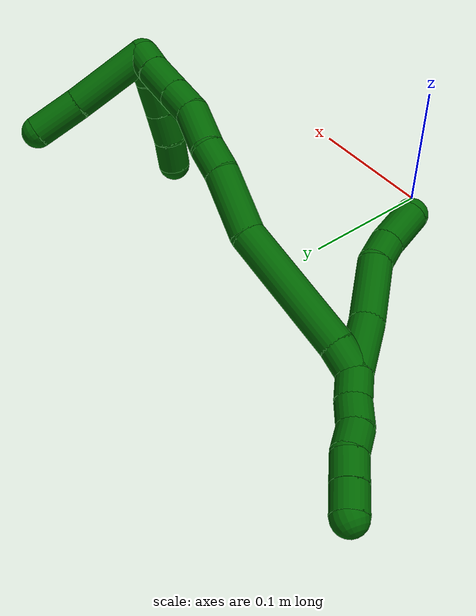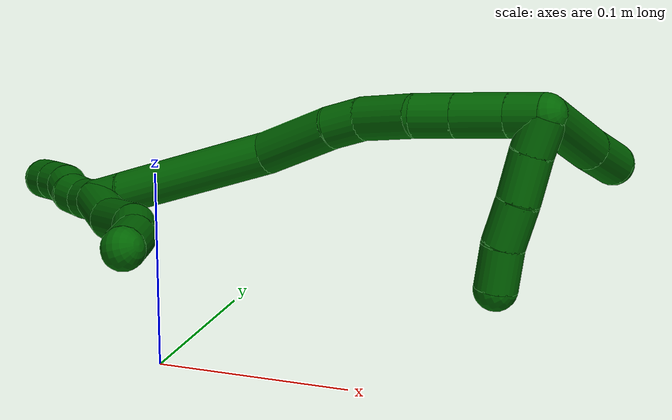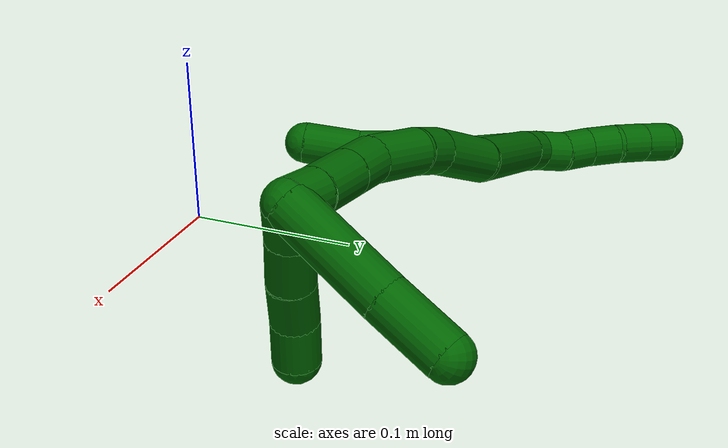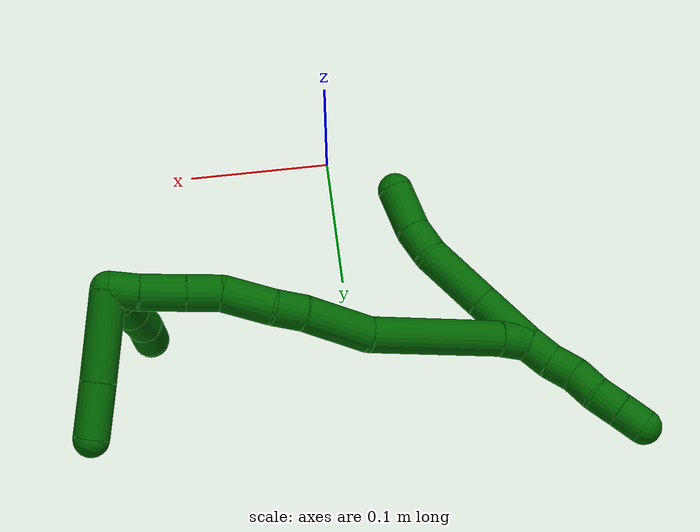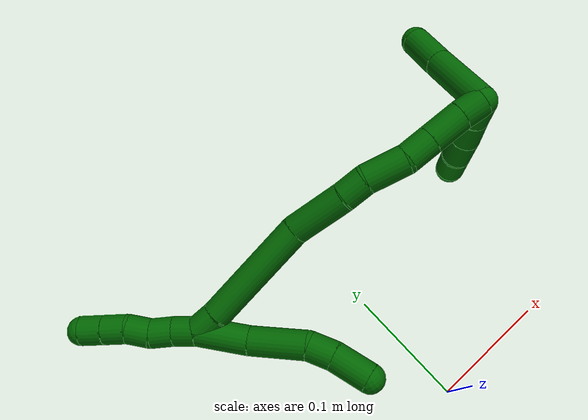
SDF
<sdf version="1.7">
 <world name="default">
  <model name="6">
   <static>0</static>
   <link name="6">
    <collision name="collision-cylinder-e_1_2_8">
     <pose>-0.005989 0.013119 -0.0169 -2.48148 -0.272953 0.762496</pose>
     <geometry><cylinder><radius>0.0125</radius><length>0.044433</length></cylinder></geometry>
     <surface>
      <friction><ode><mu>1.16</mu><mu2>1.16</mu2><slip1>0</slip1><slip2>0</slip2></ode></friction>
      <contact><ode><kp>1e+06</kp><kd>1</kd><max_vel>0</max_vel><min_depth>0.001</min_depth></ode></contact>
     </surface>
    </collision>
    <visual name="visual-cylinder-e_1_2_8">
     <pose>-0.005989 0.013119 -0.0169 -2.48148 -0.272953 0.762496</pose>
     <geometry><cylinder><radius>0.0125</radius><length>0.044433</length></cylinder></geometry>
     <material><ambient>0 0.392157 0.003922 1</ambient></material>
    </visual>
    <collision name="collision-cylinder-e_2_8_9">
     <pose>-0.020124 0.036579 -0.054857 -2.68509 -0.33419 1.25603</pose>
     <geometry><cylinder><radius>0.0125</radius><length>0.049668</length></cylinder></geometry>
     <surface>
      <friction><ode><mu>1.16</mu><mu2>1.16</mu2><slip1>0</slip1><slip2>0</slip2></ode></friction>
      <contact><ode><kp>1e+06</kp><kd>1</kd><max_vel>0</max_vel><min_depth>0.001</min_depth></ode></contact>
     </surface>
    </collision>
    <visual name="visual-cylinder-e_2_8_9">
     <pose>-0.020124 0.036579 -0.054857 -2.68509 -0.33419 1.25603</pose>
     <geometry><cylinder><radius>0.0125</radius><length>0.049668</length></cylinder></geometry>
     <material><ambient>0 0.392157 0.003922 1</ambient></material>
    </visual>
    <collision name="collision-cylinder-e_3_9_10">
     <pose>-0.032873 0.054335 -0.082994 -2.33311 -0.422092 0.928548</pose>
     <geometry><cylinder><radius>0.0125</radius><length>0.022475</length></cylinder></geometry>
     <surface>
      <friction><ode><mu>1.16</mu><mu2>1.16</mu2><slip1>0</slip1><slip2>0</slip2></ode></friction>
      <contact><ode><kp>1e+06</kp><kd>1</kd><max_vel>0</max_vel><min_depth>0.001</min_depth></ode></contact>
     </surface>
    </collision>
    <visual name="visual-cylinder-e_3_9_10">
     <pose>-0.032873 0.054335 -0.082994 -2.33311 -0.422092 0.928548</pose>
     <geometry><cylinder><radius>0.0125</radius><length>0.022475</length></cylinder></geometry>
     <material><ambient>0 0.392157 0.003922 1</ambient></material>
    </visual>
    <collision name="collision-cylinder-e_4_10_6">
     <pose>-0.047078 0.07227 -0.098814 -2.26404 -0.612039 1.18508</pose>
     <geometry><cylinder><radius>0.0125</radius><length>0.033424</length></cylinder></geometry>
     <surface>
      <friction><ode><mu>1.16</mu><mu2>1.16</mu2><slip1>0</slip1><slip2>0</slip2></ode></friction>
      <contact><ode><kp>1e+06</kp><kd>1</kd><max_vel>0</max_vel><min_depth>0.001</min_depth></ode></contact>
     </surface>
    </collision>
    <visual name="visual-cylinder-e_4_10_6">
     <pose>-0.047078 0.07227 -0.098814 -2.26404 -0.612039 1.18508</pose>
     <geometry><cylinder><radius>0.0125</radius><length>0.033424</length></cylinder></geometry>
     <material><ambient>0 0.392157 0.003922 1</ambient></material>
    </visual>
    <collision name="collision-cylinder-e_1_2_11">
     <pose>0.002731 -0.003729 0.008868 0.398062 0.276648 0.056144</pose>
     <geometry><cylinder><radius>0.0125</radius><length>0.02</length></cylinder></geometry>
     <surface>
      <friction><ode><mu>1.16</mu><mu2>1.16</mu2><slip1>0</slip1><slip2>0</slip2></ode></friction>
      <contact><ode><kp>1e+06</kp><kd>1</kd><max_vel>0</max_vel><min_depth>0.001</min_depth></ode></contact>
     </surface>
    </collision>
    <visual name="visual-cylinder-e_1_2_11">
     <pose>0.002731 -0.003729 0.008868 0.398062 0.276648 0.056144</pose>
     <geometry><cylinder><radius>0.0125</radius><length>0.02</length></cylinder></geometry>
     <material><ambient>0 0.392157 0.003922 1</ambient></material>
    </visual>
    <collision name="collision-cylinder-e_2_11_12">
     <pose>0.006362 -0.011842 0.026678 0.455772 0.090058 0.020899</pose>
     <geometry><cylinder><radius>0.0125</radius><length>0.02</length></cylinder></geometry>
     <surface>
      <friction><ode><mu>1.16</mu><mu2>1.16</mu2><slip1>0</slip1><slip2>0</slip2></ode></friction>
      <contact><ode><kp>1e+06</kp><kd>1</kd><max_vel>0</max_vel><min_depth>0.001</min_depth></ode></contact>
     </surface>
    </collision>
    <visual name="visual-cylinder-e_2_11_12">
     <pose>0.006362 -0.011842 0.026678 0.455772 0.090058 0.020899</pose>
     <geometry><cylinder><radius>0.0125</radius><length>0.02</length></cylinder></geometry>
     <material><ambient>0 0.392157 0.003922 1</ambient></material>
    </visual>
    <collision name="collision-cylinder-e_3_12_13">
     <pose>0.009817 -0.022401 0.043059 0.692916 0.258412 0.093746</pose>
     <geometry><cylinder><radius>0.0125</radius><length>0.02</length></cylinder></geometry>
     <surface>
      <friction><ode><mu>1.16</mu><mu2>1.16</mu2><slip1>0</slip1><slip2>0</slip2></ode></friction>
      <contact><ode><kp>1e+06</kp><kd>1</kd><max_vel>0</max_vel><min_depth>0.001</min_depth></ode></contact>
     </surface>
    </collision>
    <visual name="visual-cylinder-e_3_12_13">
     <pose>0.009817 -0.022401 0.043059 0.692916 0.258412 0.093746</pose>
     <geometry><cylinder><radius>0.0125</radius><length>0.02</length></cylinder></geometry>
     <material><ambient>0 0.392157 0.003922 1</ambient></material>
    </visual>
    <collision name="collision-cylinder-e_4_13_14">
     <pose>0.014262 -0.032716 0.059403 0.435103 0.190096 0.042141</pose>
     <geometry><cylinder><radius>0.0125</radius><length>0.02</length></cylinder></geometry>
     <surface>
      <friction><ode><mu>1.16</mu><mu2>1.16</mu2><slip1>0</slip1><slip2>0</slip2></ode></friction>
      <contact><ode><kp>1e+06</kp><kd>1</kd><max_vel>0</max_vel><min_depth>0.001</min_depth></ode></contact>
     </surface>
    </collision>
    <visual name="visual-cylinder-e_4_13_14">
     <pose>0.014262 -0.032716 0.059403 0.435103 0.190096 0.042141</pose>
     <geometry><cylinder><radius>0.0125</radius><length>0.02</length></cylinder></geometry>
     <material><ambient>0 0.392157 0.003922 1</ambient></material>
    </visual>
    <collision name="collision-cylinder-e_5_14_5">
     <pose>0.018216 -0.040833 0.077247 0.418664 0.208001 0.044341</pose>
     <geometry><cylinder><radius>0.0125</radius><length>0.02</length></cylinder></geometry>
     <surface>
      <friction><ode><mu>1.16</mu><mu2>1.16</mu2><slip1>0</slip1><slip2>0</slip2></ode></friction>
      <contact><ode><kp>1e+06</kp><kd>1</kd><max_vel>0</max_vel><min_depth>0.001</min_depth></ode></contact>
     </surface>
    </collision>
    <visual name="visual-cylinder-e_5_14_5">
     <pose>0.018216 -0.040833 0.077247 0.418664 0.208001 0.044341</pose>
     <geometry><cylinder><radius>0.0125</radius><length>0.02</length></cylinder></geometry>
     <material><ambient>0 0.392157 0.003922 1</ambient></material>
    </visual>
    <collision name="collision-cylinder-e_1_2_15">
     <pose>0.001296 -0.001369 -0.01067 3.01402 0.119929 1.50887</pose>
     <geometry><cylinder><radius>0.0125</radius><length>0.021671</length></cylinder></geometry>
     <surface>
      <friction><ode><mu>1.16</mu><mu2>1.16</mu2><slip1>0</slip1><slip2>0</slip2></ode></friction>
      <contact><ode><kp>1e+06</kp><kd>1</kd><max_vel>0</max_vel><min_depth>0.001</min_depth></ode></contact>
     </surface>
    </collision>
    <visual name="visual-cylinder-e_1_2_15">
     <pose>0.001296 -0.001369 -0.01067 3.01402 0.119929 1.50887</pose>
     <geometry><cylinder><radius>0.0125</radius><length>0.021671</length></cylinder></geometry>
     <material><ambient>0 0.392157 0.003922 1</ambient></material>
    </visual>
    <collision name="collision-cylinder-e_2_15_16">
     <pose>0.0127 -0.012538 -0.067539 2.93255 0.21084 1.57942</pose>
     <geometry><cylinder><radius>0.0125</radius><length>0.096591</length></cylinder></geometry>
     <surface>
      <friction><ode><mu>1.16</mu><mu2>1.16</mu2><slip1>0</slip1><slip2>0</slip2></ode></friction>
      <contact><ode><kp>1e+06</kp><kd>1</kd><max_vel>0</max_vel><min_depth>0.001</min_depth></ode></contact>
     </surface>
    </collision>
    <visual name="visual-cylinder-e_2_15_16">
     <pose>0.0127 -0.012538 -0.067539 2.93255 0.21084 1.57942</pose>
     <geometry><cylinder><radius>0.0125</radius><length>0.096591</length></cylinder></geometry>
     <material><ambient>0 0.392157 0.003922 1</ambient></material>
    </visual>
    <collision name="collision-cylinder-e_3_16_17">
     <pose>0.02182 -0.024855 -0.138114 3.03874 -0.040261 -0.745695</pose>
     <geometry><cylinder><radius>0.0125</radius><length>0.049054</length></cylinder></geometry>
     <surface>
      <friction><ode><mu>1.16</mu><mu2>1.16</mu2><slip1>0</slip1><slip2>0</slip2></ode></friction>
      <contact><ode><kp>1e+06</kp><kd>1</kd><max_vel>0</max_vel><min_depth>0.001</min_depth></ode></contact>
     </surface>
    </collision>
    <visual name="visual-cylinder-e_3_16_17">
     <pose>0.02182 -0.024855 -0.138114 3.03874 -0.040261 -0.745695</pose>
     <geometry><cylinder><radius>0.0125</radius><length>0.049054</length></cylinder></geometry>
     <material><ambient>0 0.392157 0.003922 1</ambient></material>
    </visual>
    <collision name="collision-cylinder-e_4_17_18">
     <pose>0.021856 -0.028457 -0.173314 3.04158 0.093736 1.5059</pose>
     <geometry><cylinder><radius>0.0125</radius><length>0.021849</length></cylinder></geometry>
     <surface>
      <friction><ode><mu>1.16</mu><mu2>1.16</mu2><slip1>0</slip1><slip2>0</slip2></ode></friction>
      <contact><ode><kp>1e+06</kp><kd>1</kd><max_vel>0</max_vel><min_depth>0.001</min_depth></ode></contact>
     </surface>
    </collision>
    <visual name="visual-cylinder-e_4_17_18">
     <pose>0.021856 -0.028457 -0.173314 3.04158 0.093736 1.5059</pose>
     <geometry><cylinder><radius>0.0125</radius><length>0.021849</length></cylinder></geometry>
     <material><ambient>0 0.392157 0.003922 1</ambient></material>
    </visual>
    <collision name="collision-cylinder-e_5_18_19">
     <pose>0.024228 -0.027178 -0.201621 -3.00718 0.076391 -1.0327</pose>
     <geometry><cylinder><radius>0.0125</radius><length>0.035391</length></cylinder></geometry>
     <surface>
      <friction><ode><mu>1.16</mu><mu2>1.16</mu2><slip1>0</slip1><slip2>0</slip2></ode></friction>
      <contact><ode><kp>1e+06</kp><kd>1</kd><max_vel>0</max_vel><min_depth>0.001</min_depth></ode></contact>
     </surface>
    </collision>
    <visual name="visual-cylinder-e_5_18_19">
     <pose>0.024228 -0.027178 -0.201621 -3.00718 0.076391 -1.0327</pose>
     <geometry><cylinder><radius>0.0125</radius><length>0.035391</length></cylinder></geometry>
     <material><ambient>0 0.392157 0.003922 1</ambient></material>
    </visual>
    <collision name="collision-cylinder-e_6_19_20">
     <pose>0.029288 -0.024475 -0.230444 -3.11174 0.316034 -2.95479</pose>
     <geometry><cylinder><radius>0.0125</radius><length>0.023869</length></cylinder></geometry>
     <surface>
      <friction><ode><mu>1.16</mu><mu2>1.16</mu2><slip1>0</slip1><slip2>0</slip2></ode></friction>
      <contact><ode><kp>1e+06</kp><kd>1</kd><max_vel>0</max_vel><min_depth>0.001</min_depth></ode></contact>
     </surface>
    </collision>
    <visual name="visual-cylinder-e_6_19_20">
     <pose>0.029288 -0.024475 -0.230444 -3.11174 0.316034 -2.95479</pose>
     <geometry><cylinder><radius>0.0125</radius><length>0.023869</length></cylinder></geometry>
     <material><ambient>0 0.392157 0.003922 1</ambient></material>
    </visual>
    <collision name="collision-cylinder-e_7_20_21">
     <pose>0.037801 -0.023699 -0.256468 -3.11178 0.31598 -2.95501</pose>
     <geometry><cylinder><radius>0.0125</radius><length>0.030916</length></cylinder></geometry>
     <surface>
      <friction><ode><mu>1.16</mu><mu2>1.16</mu2><slip1>0</slip1><slip2>0</slip2></ode></friction>
      <contact><ode><kp>1e+06</kp><kd>1</kd><max_vel>0</max_vel><min_depth>0.001</min_depth></ode></contact>
     </surface>
    </collision>
    <visual name="visual-cylinder-e_7_20_21">
     <pose>0.037801 -0.023699 -0.256468 -3.11178 0.31598 -2.95501</pose>
     <geometry><cylinder><radius>0.0125</radius><length>0.030916</length></cylinder></geometry>
     <material><ambient>0 0.392157 0.003922 1</ambient></material>
    </visual>
    <collision name="collision-cylinder-e_8_21_1">
     <pose>0.045083 -0.022333 -0.281139 -3.0489 0.242341 -2.41377</pose>
     <geometry><cylinder><radius>0.0125</radius><length>0.020659</length></cylinder></geometry>
     <surface>
      <friction><ode><mu>1.16</mu><mu2>1.16</mu2><slip1>0</slip1><slip2>0</slip2></ode></friction>
      <contact><ode><kp>1e+06</kp><kd>1</kd><max_vel>0</max_vel><min_depth>0.001</min_depth></ode></contact>
     </surface>
    </collision>
    <visual name="visual-cylinder-e_8_21_1">
     <pose>0.045083 -0.022333 -0.281139 -3.0489 0.242341 -2.41377</pose>
     <geometry><cylinder><radius>0.0125</radius><length>0.020659</length></cylinder></geometry>
     <material><ambient>0 0.392157 0.003922 1</ambient></material>
    </visual>
    <collision name="collision-cylinder-e_1_1_22">
     <pose>0.051933 -0.013627 -0.285189 -0.918999 0.42016 -0.210242</pose>
     <geometry><cylinder><radius>0.0125</radius><length>0.021431</length></cylinder></geometry>
     <surface>
      <friction><ode><mu>1.16</mu><mu2>1.16</mu2><slip1>0</slip1><slip2>0</slip2></ode></friction>
      <contact><ode><kp>1e+06</kp><kd>1</kd><max_vel>0</max_vel><min_depth>0.001</min_depth></ode></contact>
     </surface>
    </collision>
    <visual name="visual-cylinder-e_1_1_22">
     <pose>0.051933 -0.013627 -0.285189 -0.918999 0.42016 -0.210242</pose>
     <geometry><cylinder><radius>0.0125</radius><length>0.021431</length></cylinder></geometry>
     <material><ambient>0 0.392157 0.003922 1</ambient></material>
    </visual>
    <collision name="collision-cylinder-e_2_22_23">
     <pose>0.062462 0.004571 -0.272543 -0.998553 0.461134 -0.254654</pose>
     <geometry><cylinder><radius>0.0125</radius><length>0.027679</length></cylinder></geometry>
     <surface>
      <friction><ode><mu>1.16</mu><mu2>1.16</mu2><slip1>0</slip1><slip2>0</slip2></ode></friction>
      <contact><ode><kp>1e+06</kp><kd>1</kd><max_vel>0</max_vel><min_depth>0.001</min_depth></ode></contact>
     </surface>
    </collision>
    <visual name="visual-cylinder-e_2_22_23">
     <pose>0.062462 0.004571 -0.272543 -0.998553 0.461134 -0.254654</pose>
     <geometry><cylinder><radius>0.0125</radius><length>0.027679</length></cylinder></geometry>
     <material><ambient>0 0.392157 0.003922 1</ambient></material>
    </visual>
    <collision name="collision-cylinder-e_3_23_24">
     <pose>0.07429 0.024256 -0.258763 -0.919169 0.452817 -0.227043</pose>
     <geometry><cylinder><radius>0.0125</radius><length>0.02592</length></cylinder></geometry>
     <surface>
      <friction><ode><mu>1.16</mu><mu2>1.16</mu2><slip1>0</slip1><slip2>0</slip2></ode></friction>
      <contact><ode><kp>1e+06</kp><kd>1</kd><max_vel>0</max_vel><min_depth>0.001</min_depth></ode></contact>
     </surface>
    </collision>
    <visual name="visual-cylinder-e_3_23_24">
     <pose>0.07429 0.024256 -0.258763 -0.919169 0.452817 -0.227043</pose>
     <geometry><cylinder><radius>0.0125</radius><length>0.02592</length></cylinder></geometry>
     <material><ambient>0 0.392157 0.003922 1</ambient></material>
    </visual>
    <collision name="collision-cylinder-e_4_24_4">
     <pose>0.08675 0.042506 -0.246304 -1.03028 0.575001 -0.331722</pose>
     <geometry><cylinder><radius>0.0125</radius><length>0.02497</length></cylinder></geometry>
     <surface>
      <friction><ode><mu>1.16</mu><mu2>1.16</mu2><slip1>0</slip1><slip2>0</slip2></ode></friction>
      <contact><ode><kp>1e+06</kp><kd>1</kd><max_vel>0</max_vel><min_depth>0.001</min_depth></ode></contact>
     </surface>
    </collision>
    <visual name="visual-cylinder-e_4_24_4">
     <pose>0.08675 0.042506 -0.246304 -1.03028 0.575001 -0.331722</pose>
     <geometry><cylinder><radius>0.0125</radius><length>0.02497</length></cylinder></geometry>
     <material><ambient>0 0.392157 0.003922 1</ambient></material>
    </visual>
    <collision name="collision-cylinder-e_1_1_25">
     <pose>0.076787 -0.029714 -0.28501 0.936513 1.23145 0.687251</pose>
     <geometry><cylinder><radius>0.0125</radius><length>0.061984</length></cylinder></geometry>
     <surface>
      <friction><ode><mu>1.16</mu><mu2>1.16</mu2><slip1>0</slip1><slip2>0</slip2></ode></friction>
      <contact><ode><kp>1e+06</kp><kd>1</kd><max_vel>0</max_vel><min_depth>0.001</min_depth></ode></contact>
     </surface>
    </collision>
    <visual name="visual-cylinder-e_1_1_25">
     <pose>0.076787 -0.029714 -0.28501 0.936513 1.23145 0.687251</pose>
     <geometry><cylinder><radius>0.0125</radius><length>0.061984</length></cylinder></geometry>
     <material><ambient>0 0.392157 0.003922 1</ambient></material>
    </visual>
    <collision name="collision-cylinder-e_2_25_3">
     <pose>0.123769 -0.043845 -0.275416 1.03186 1.20598 0.744613</pose>
     <geometry><cylinder><radius>0.0125</radius><length>0.038016</length></cylinder></geometry>
     <surface>
      <friction><ode><mu>1.16</mu><mu2>1.16</mu2><slip1>0</slip1><slip2>0</slip2></ode></friction>
      <contact><ode><kp>1e+06</kp><kd>1</kd><max_vel>0</max_vel><min_depth>0.001</min_depth></ode></contact>
     </surface>
    </collision>
    <visual name="visual-cylinder-e_2_25_3">
     <pose>0.123769 -0.043845 -0.275416 1.03186 1.20598 0.744613</pose>
     <geometry><cylinder><radius>0.0125</radius><length>0.038016</length></cylinder></geometry>
     <material><ambient>0 0.392157 0.003922 1</ambient></material>
    </visual>
    <collision name="collision-sphere-3">
     <pose>0.141526 -0.049665 -0.271936 0 -0 0</pose>
     <geometry><sphere><radius>0.0125</radius></sphere></geometry>
     <surface>
      <friction><ode><mu>1.16</mu><mu2>1.16</mu2><slip1>0</slip1><slip2>0</slip2></ode></friction>
      <contact><ode><kp>1e+06</kp><kd>1</kd><max_vel>0</max_vel><min_depth>0.001</min_depth></ode></contact>
     </surface>
    </collision>
    <visual name="visual-sphere-3">
     <pose>0.141526 -0.049665 -0.271936 0 -0 0</pose>
     <geometry><sphere><radius>0.0125</radius></sphere></geometry>
     <material><ambient>0 0.392157 0.003922 1</ambient></material>
    </visual>
    <collision name="collision-sphere-25">
     <pose>0.106012 -0.038024 -0.278897 0 -0 0</pose>
     <geometry><sphere><radius>0.0125</radius></sphere></geometry>
     <surface>
      <friction><ode><mu>1.16</mu><mu2>1.16</mu2><slip1>0</slip1><slip2>0</slip2></ode></friction>
      <contact><ode><kp>1e+06</kp><kd>1</kd><max_vel>0</max_vel><min_depth>0.001</min_depth></ode></contact>
     </surface>
    </collision>
    <visual name="visual-sphere-25">
     <pose>0.106012 -0.038024 -0.278897 0 -0 0</pose>
     <geometry><sphere><radius>0.0125</radius></sphere></geometry>
     <material><ambient>0 0.392157 0.003922 1</ambient></material>
    </visual>
    <collision name="collision-sphere-4">
     <pose>0.09354 0.051489 -0.240912 0 -0 0</pose>
     <geometry><sphere><radius>0.0125</radius></sphere></geometry>
     <surface>
      <friction><ode><mu>1.16</mu><mu2>1.16</mu2><slip1>0</slip1><slip2>0</slip2></ode></friction>
      <contact><ode><kp>1e+06</kp><kd>1</kd><max_vel>0</max_vel><min_depth>0.001</min_depth></ode></contact>
     </surface>
    </collision>
    <visual name="visual-sphere-4">
     <pose>0.09354 0.051489 -0.240912 0 -0 0</pose>
     <geometry><sphere><radius>0.0125</radius></sphere></geometry>
     <material><ambient>0 0.392157 0.003922 1</ambient></material>
    </visual>
    <collision name="collision-sphere-24">
     <pose>0.07996 0.033522 -0.251695 0 -0 0</pose>
     <geometry><sphere><radius>0.0125</radius></sphere></geometry>
     <surface>
      <friction><ode><mu>1.16</mu><mu2>1.16</mu2><slip1>0</slip1><slip2>0</slip2></ode></friction>
      <contact><ode><kp>1e+06</kp><kd>1</kd><max_vel>0</max_vel><min_depth>0.001</min_depth></ode></contact>
     </surface>
    </collision>
    <visual name="visual-sphere-24">
     <pose>0.07996 0.033522 -0.251695 0 -0 0</pose>
     <geometry><sphere><radius>0.0125</radius></sphere></geometry>
     <material><ambient>0 0.392157 0.003922 1</ambient></material>
    </visual>
    <collision name="collision-sphere-23">
     <pose>0.06862 0.01499 -0.265831 0 -0 0</pose>
     <geometry><sphere><radius>0.0125</radius></sphere></geometry>
     <surface>
      <friction><ode><mu>1.16</mu><mu2>1.16</mu2><slip1>0</slip1><slip2>0</slip2></ode></friction>
      <contact><ode><kp>1e+06</kp><kd>1</kd><max_vel>0</max_vel><min_depth>0.001</min_depth></ode></contact>
     </surface>
    </collision>
    <visual name="visual-sphere-23">
     <pose>0.06862 0.01499 -0.265831 0 -0 0</pose>
     <geometry><sphere><radius>0.0125</radius></sphere></geometry>
     <material><ambient>0 0.392157 0.003922 1</ambient></material>
    </visual>
    <collision name="collision-sphere-22">
     <pose>0.056304 -0.005849 -0.279254 0 -0 0</pose>
     <geometry><sphere><radius>0.0125</radius></sphere></geometry>
     <surface>
      <friction><ode><mu>1.16</mu><mu2>1.16</mu2><slip1>0</slip1><slip2>0</slip2></ode></friction>
      <contact><ode><kp>1e+06</kp><kd>1</kd><max_vel>0</max_vel><min_depth>0.001</min_depth></ode></contact>
     </surface>
    </collision>
    <visual name="visual-sphere-22">
     <pose>0.056304 -0.005849 -0.279254 0 -0 0</pose>
     <geometry><sphere><radius>0.0125</radius></sphere></geometry>
     <material><ambient>0 0.392157 0.003922 1</ambient></material>
    </visual>
    <collision name="collision-sphere-1">
     <pose>0.047562 -0.021405 -0.291124 0 -0 0</pose>
     <geometry><sphere><radius>0.0125</radius></sphere></geometry>
     <surface>
      <friction><ode><mu>1.16</mu><mu2>1.16</mu2><slip1>0</slip1><slip2>0</slip2></ode></friction>
      <contact><ode><kp>1e+06</kp><kd>1</kd><max_vel>0</max_vel><min_depth>0.001</min_depth></ode></contact>
     </surface>
    </collision>
    <visual name="visual-sphere-1">
     <pose>0.047562 -0.021405 -0.291124 0 -0 0</pose>
     <geometry><sphere><radius>0.0125</radius></sphere></geometry>
     <material><ambient>0 0.392157 0.003922 1</ambient></material>
    </visual>
    <collision name="collision-sphere-21">
     <pose>0.042605 -0.023261 -0.271154 0 -0 0</pose>
     <geometry><sphere><radius>0.0125</radius></sphere></geometry>
     <surface>
      <friction><ode><mu>1.16</mu><mu2>1.16</mu2><slip1>0</slip1><slip2>0</slip2></ode></friction>
      <contact><ode><kp>1e+06</kp><kd>1</kd><max_vel>0</max_vel><min_depth>0.001</min_depth></ode></contact>
     </surface>
    </collision>
    <visual name="visual-sphere-21">
     <pose>0.042605 -0.023261 -0.271154 0 -0 0</pose>
     <geometry><sphere><radius>0.0125</radius></sphere></geometry>
     <material><ambient>0 0.392157 0.003922 1</ambient></material>
    </visual>
    <collision name="collision-sphere-11">
     <pose>0.005463 -0.007458 0.017735 0 -0 0</pose>
     <geometry><sphere><radius>0.0125</radius></sphere></geometry>
     <surface>
      <friction><ode><mu>1.16</mu><mu2>1.16</mu2><slip1>0</slip1><slip2>0</slip2></ode></friction>
      <contact><ode><kp>1e+06</kp><kd>1</kd><max_vel>0</max_vel><min_depth>0.001</min_depth></ode></contact>
     </surface>
    </collision>
    <visual name="visual-sphere-11">
     <pose>0.005463 -0.007458 0.017735 0 -0 0</pose>
     <geometry><sphere><radius>0.0125</radius></sphere></geometry>
     <material><ambient>0 0.392157 0.003922 1</ambient></material>
    </visual>
    <collision name="collision-sphere-6">
     <pose>-0.05668 0.082791 -0.107556 0 -0 0</pose>
     <geometry><sphere><radius>0.0125</radius></sphere></geometry>
     <surface>
      <friction><ode><mu>1.16</mu><mu2>1.16</mu2><slip1>0</slip1><slip2>0</slip2></ode></friction>
      <contact><ode><kp>1e+06</kp><kd>1</kd><max_vel>0</max_vel><min_depth>0.001</min_depth></ode></contact>
     </surface>
    </collision>
    <visual name="visual-sphere-6">
     <pose>-0.05668 0.082791 -0.107556 0 -0 0</pose>
     <geometry><sphere><radius>0.0125</radius></sphere></geometry>
     <material><ambient>0 0.392157 0.003922 1</ambient></material>
    </visual>
    <collision name="collision-sphere-10">
     <pose>-0.037477 0.061749 -0.090073 0 -0 0</pose>
     <geometry><sphere><radius>0.0125</radius></sphere></geometry>
     <surface>
      <friction><ode><mu>1.16</mu><mu2>1.16</mu2><slip1>0</slip1><slip2>0</slip2></ode></friction>
      <contact><ode><kp>1e+06</kp><kd>1</kd><max_vel>0</max_vel><min_depth>0.001</min_depth></ode></contact>
     </surface>
    </collision>
    <visual name="visual-sphere-10">
     <pose>-0.037477 0.061749 -0.090073 0 -0 0</pose>
     <geometry><sphere><radius>0.0125</radius></sphere></geometry>
     <material><ambient>0 0.392157 0.003922 1</ambient></material>
    </visual>
    <collision name="collision-sphere-9">
     <pose>-0.028269 0.046921 -0.075914 0 -0 0</pose>
     <geometry><sphere><radius>0.0125</radius></sphere></geometry>
     <surface>
      <friction><ode><mu>1.16</mu><mu2>1.16</mu2><slip1>0</slip1><slip2>0</slip2></ode></friction>
      <contact><ode><kp>1e+06</kp><kd>1</kd><max_vel>0</max_vel><min_depth>0.001</min_depth></ode></contact>
     </surface>
    </collision>
    <visual name="visual-sphere-9">
     <pose>-0.028269 0.046921 -0.075914 0 -0 0</pose>
     <geometry><sphere><radius>0.0125</radius></sphere></geometry>
     <material><ambient>0 0.392157 0.003922 1</ambient></material>
    </visual>
    <collision name="collision-sphere-2">
     <geometry><sphere><radius>0.0125</radius></sphere></geometry>
     <surface>
      <friction><ode><mu>1.16</mu><mu2>1.16</mu2><slip1>0</slip1><slip2>0</slip2></ode></friction>
      <contact><ode><kp>1e+06</kp><kd>1</kd><max_vel>0</max_vel><min_depth>0.001</min_depth></ode></contact>
     </surface>
    </collision>
    <visual name="visual-sphere-2">
     <geometry><sphere><radius>0.0125</radius></sphere></geometry>
     <material><ambient>0 0.392157 0.003922 1</ambient></material>
    </visual>
    <collision name="collision-sphere-19">
     <pose>0.025579 -0.024814 -0.219105 0 -0 0</pose>
     <geometry><sphere><radius>0.0125</radius></sphere></geometry>
     <surface>
      <friction><ode><mu>1.16</mu><mu2>1.16</mu2><slip1>0</slip1><slip2>0</slip2></ode></friction>
      <contact><ode><kp>1e+06</kp><kd>1</kd><max_vel>0</max_vel><min_depth>0.001</min_depth></ode></contact>
     </surface>
    </collision>
    <visual name="visual-sphere-19">
     <pose>0.025579 -0.024814 -0.219105 0 -0 0</pose>
     <geometry><sphere><radius>0.0125</radius></sphere></geometry>
     <material><ambient>0 0.392157 0.003922 1</ambient></material>
    </visual>
    <collision name="collision-sphere-8">
     <pose>-0.011978 0.026238 -0.033799 0 -0 0</pose>
     <geometry><sphere><radius>0.0125</radius></sphere></geometry>
     <surface>
      <friction><ode><mu>1.16</mu><mu2>1.16</mu2><slip1>0</slip1><slip2>0</slip2></ode></friction>
      <contact><ode><kp>1e+06</kp><kd>1</kd><max_vel>0</max_vel><min_depth>0.001</min_depth></ode></contact>
     </surface>
    </collision>
    <visual name="visual-sphere-8">
     <pose>-0.011978 0.026238 -0.033799 0 -0 0</pose>
     <geometry><sphere><radius>0.0125</radius></sphere></geometry>
     <material><ambient>0 0.392157 0.003922 1</ambient></material>
    </visual>
    <collision name="collision-sphere-12">
     <pose>0.007261 -0.016225 0.035621 0 -0 0</pose>
     <geometry><sphere><radius>0.0125</radius></sphere></geometry>
     <surface>
      <friction><ode><mu>1.16</mu><mu2>1.16</mu2><slip1>0</slip1><slip2>0</slip2></ode></friction>
      <contact><ode><kp>1e+06</kp><kd>1</kd><max_vel>0</max_vel><min_depth>0.001</min_depth></ode></contact>
     </surface>
    </collision>
    <visual name="visual-sphere-12">
     <pose>0.007261 -0.016225 0.035621 0 -0 0</pose>
     <geometry><sphere><radius>0.0125</radius></sphere></geometry>
     <material><ambient>0 0.392157 0.003922 1</ambient></material>
    </visual>
    <collision name="collision-sphere-13">
     <pose>0.012372 -0.028577 0.050498 0 -0 0</pose>
     <geometry><sphere><radius>0.0125</radius></sphere></geometry>
     <surface>
      <friction><ode><mu>1.16</mu><mu2>1.16</mu2><slip1>0</slip1><slip2>0</slip2></ode></friction>
      <contact><ode><kp>1e+06</kp><kd>1</kd><max_vel>0</max_vel><min_depth>0.001</min_depth></ode></contact>
     </surface>
    </collision>
    <visual name="visual-sphere-13">
     <pose>0.012372 -0.028577 0.050498 0 -0 0</pose>
     <geometry><sphere><radius>0.0125</radius></sphere></geometry>
     <material><ambient>0 0.392157 0.003922 1</ambient></material>
    </visual>
    <collision name="collision-sphere-14">
     <pose>0.016151 -0.036855 0.068308 0 -0 0</pose>
     <geometry><sphere><radius>0.0125</radius></sphere></geometry>
     <surface>
      <friction><ode><mu>1.16</mu><mu2>1.16</mu2><slip1>0</slip1><slip2>0</slip2></ode></friction>
      <contact><ode><kp>1e+06</kp><kd>1</kd><max_vel>0</max_vel><min_depth>0.001</min_depth></ode></contact>
     </surface>
    </collision>
    <visual name="visual-sphere-14">
     <pose>0.016151 -0.036855 0.068308 0 -0 0</pose>
     <geometry><sphere><radius>0.0125</radius></sphere></geometry>
     <material><ambient>0 0.392157 0.003922 1</ambient></material>
    </visual>
    <collision name="collision-sphere-5">
     <pose>0.020281 -0.044811 0.086186 0 -0 0</pose>
     <geometry><sphere><radius>0.0125</radius></sphere></geometry>
     <surface>
      <friction><ode><mu>1.16</mu><mu2>1.16</mu2><slip1>0</slip1><slip2>0</slip2></ode></friction>
      <contact><ode><kp>1e+06</kp><kd>1</kd><max_vel>0</max_vel><min_depth>0.001</min_depth></ode></contact>
     </surface>
    </collision>
    <visual name="visual-sphere-5">
     <pose>0.020281 -0.044811 0.086186 0 -0 0</pose>
     <geometry><sphere><radius>0.0125</radius></sphere></geometry>
     <material><ambient>0 0.392157 0.003922 1</ambient></material>
    </visual>
    <collision name="collision-sphere-15">
     <pose>0.002593 -0.002737 -0.021341 0 -0 0</pose>
     <geometry><sphere><radius>0.0125</radius></sphere></geometry>
     <surface>
      <friction><ode><mu>1.16</mu><mu2>1.16</mu2><slip1>0</slip1><slip2>0</slip2></ode></friction>
      <contact><ode><kp>1e+06</kp><kd>1</kd><max_vel>0</max_vel><min_depth>0.001</min_depth></ode></contact>
     </surface>
    </collision>
    <visual name="visual-sphere-15">
     <pose>0.002593 -0.002737 -0.021341 0 -0 0</pose>
     <geometry><sphere><radius>0.0125</radius></sphere></geometry>
     <material><ambient>0 0.392157 0.003922 1</ambient></material>
    </visual>
    <collision name="collision-sphere-16">
     <pose>0.022807 -0.022338 -0.113736 0 -0 0</pose>
     <geometry><sphere><radius>0.0125</radius></sphere></geometry>
     <surface>
      <friction><ode><mu>1.16</mu><mu2>1.16</mu2><slip1>0</slip1><slip2>0</slip2></ode></friction>
      <contact><ode><kp>1e+06</kp><kd>1</kd><max_vel>0</max_vel><min_depth>0.001</min_depth></ode></contact>
     </surface>
    </collision>
    <visual name="visual-sphere-16">
     <pose>0.022807 -0.022338 -0.113736 0 -0 0</pose>
     <geometry><sphere><radius>0.0125</radius></sphere></geometry>
     <material><ambient>0 0.392157 0.003922 1</ambient></material>
    </visual>
    <collision name="collision-sphere-17">
     <pose>0.020833 -0.027371 -0.162492 0 -0 0</pose>
     <geometry><sphere><radius>0.0125</radius></sphere></geometry>
     <surface>
      <friction><ode><mu>1.16</mu><mu2>1.16</mu2><slip1>0</slip1><slip2>0</slip2></ode></friction>
      <contact><ode><kp>1e+06</kp><kd>1</kd><max_vel>0</max_vel><min_depth>0.001</min_depth></ode></contact>
     </surface>
    </collision>
    <visual name="visual-sphere-17">
     <pose>0.020833 -0.027371 -0.162492 0 -0 0</pose>
     <geometry><sphere><radius>0.0125</radius></sphere></geometry>
     <material><ambient>0 0.392157 0.003922 1</ambient></material>
    </visual>
    <collision name="collision-sphere-18">
     <pose>0.022878 -0.029543 -0.184136 0 -0 0</pose>
     <geometry><sphere><radius>0.0125</radius></sphere></geometry>
     <surface>
      <friction><ode><mu>1.16</mu><mu2>1.16</mu2><slip1>0</slip1><slip2>0</slip2></ode></friction>
      <contact><ode><kp>1e+06</kp><kd>1</kd><max_vel>0</max_vel><min_depth>0.001</min_depth></ode></contact>
     </surface>
    </collision>
    <visual name="visual-sphere-18">
     <pose>0.022878 -0.029543 -0.184136 0 -0 0</pose>
     <geometry><sphere><radius>0.0125</radius></sphere></geometry>
     <material><ambient>0 0.392157 0.003922 1</ambient></material>
    </visual>
    <collision name="collision-sphere-20">
     <pose>0.032998 -0.024137 -0.241782 0 -0 0</pose>
     <geometry><sphere><radius>0.0125</radius></sphere></geometry>
     <surface>
      <friction><ode><mu>1.16</mu><mu2>1.16</mu2><slip1>0</slip1><slip2>0</slip2></ode></friction>
      <contact><ode><kp>1e+06</kp><kd>1</kd><max_vel>0</max_vel><min_depth>0.001</min_depth></ode></contact>
     </surface>
    </collision>
    <visual name="visual-sphere-20">
     <pose>0.032998 -0.024137 -0.241782 0 -0 0</pose>
     <geometry><sphere><radius>0.0125</radius></sphere></geometry>
     <material><ambient>0 0.392157 0.003922 1</ambient></material>
    </visual>
    <inertial>
     <pose>0.027077 -0.005333 -0.136903 0 -0 0</pose>
     <mass>0.75</mass>
     <inertia>
      <ixx>0.000143</ixx>
      <ixy>0</ixy>
      <ixz>0</ixz>
      <iyy>0.00013</iyy>
      <iyz>0</iyz>
      <izz>-5.4e-05</izz>
     </inertia>
    </inertial>
   </link>
   <pose>-0.120661 0.176731 0.023697 -2.03575 0.69426 0.975969</pose>
  </model>
 </world>
</sdf>
